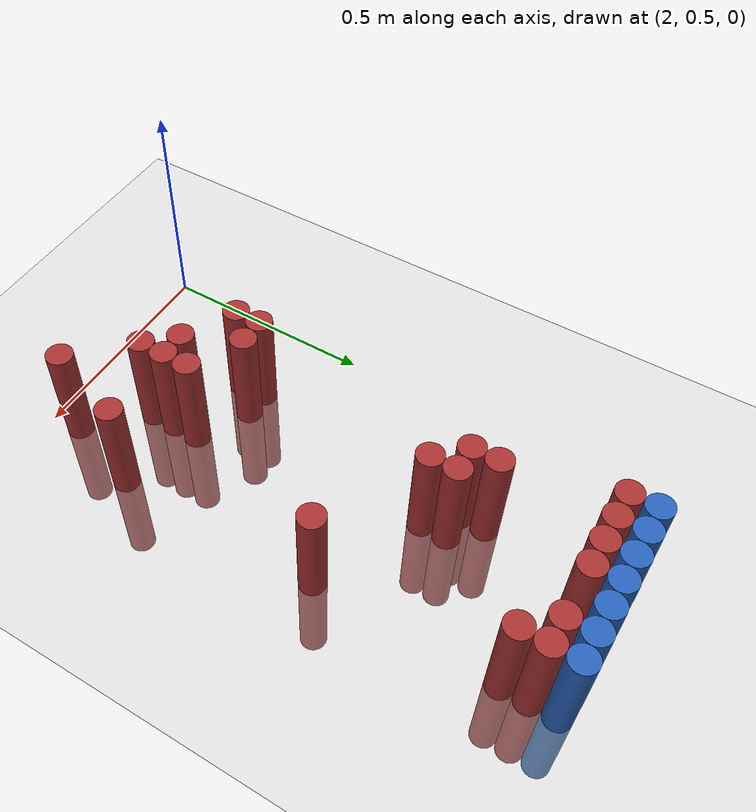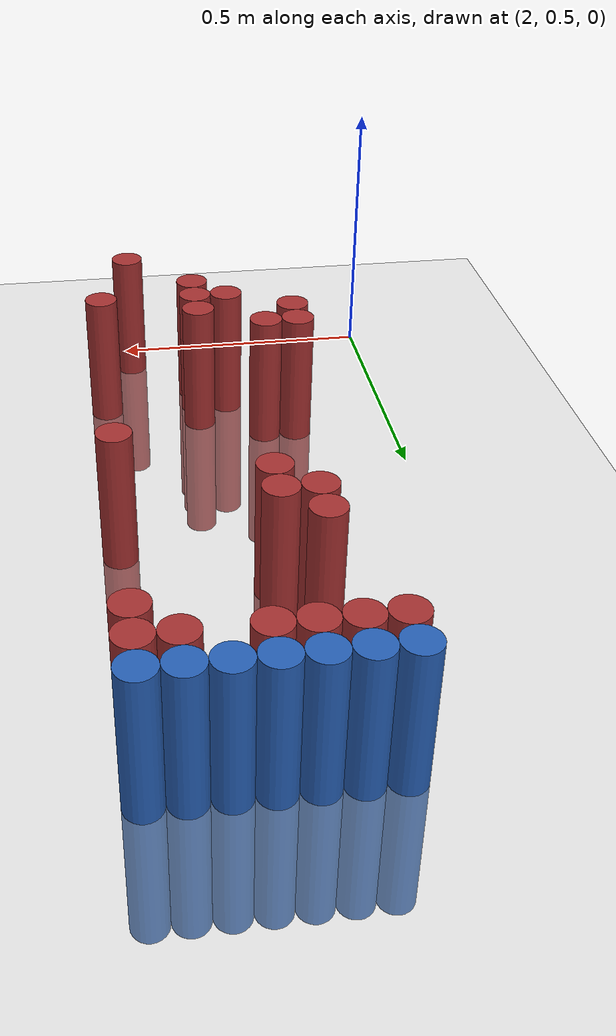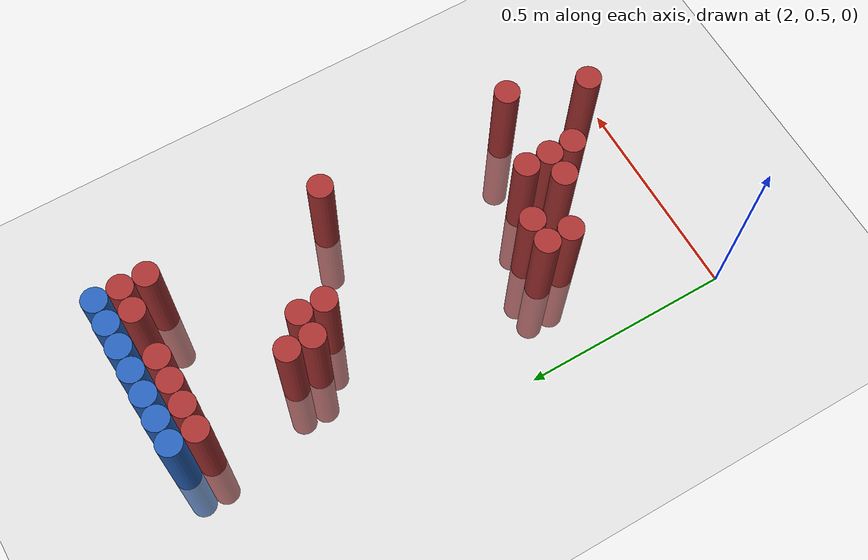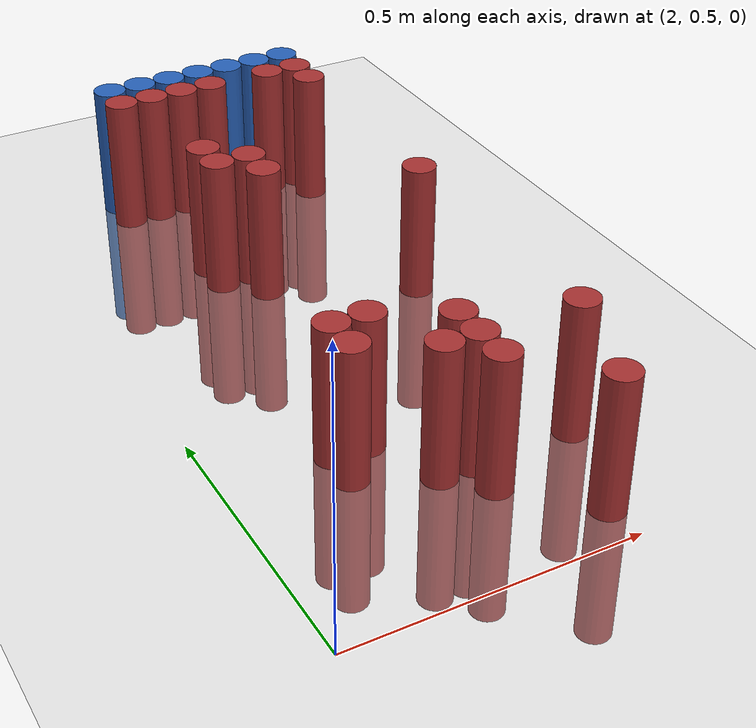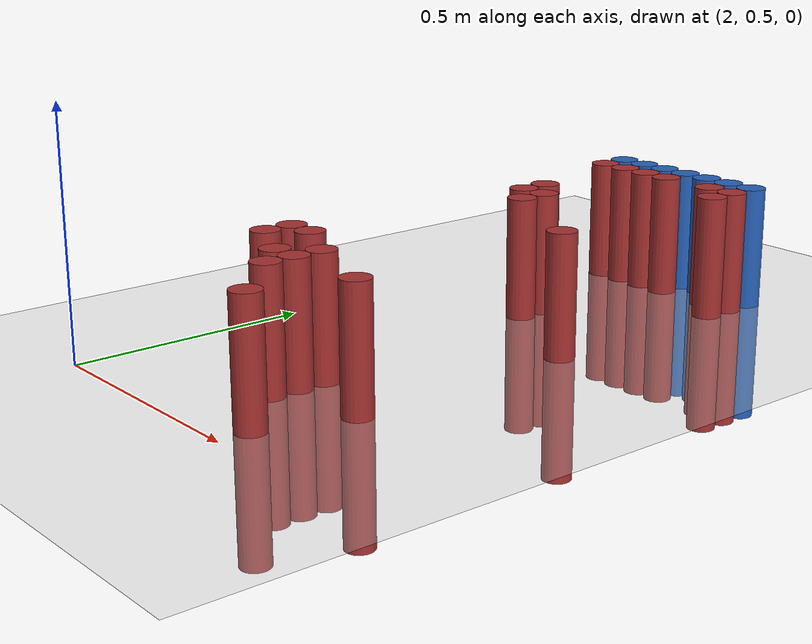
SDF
<sdf version="1.6">
 <world name="default">
  <model name="ground_plane">
   <static>1</static>
   <link name="link">
    <collision name="collision">
     <geometry><plane><normal>0 0 1</normal><size>100 100</size></plane></geometry>
     <surface><friction><ode><mu>100</mu><mu2>50</mu2></ode></friction></surface>
    </collision>
    <visual name="visual">
     <cast_shadows>0</cast_shadows>
     <geometry><plane><normal>0 0 1</normal><size>100 100</size></plane></geometry>
     <material>
      <script><uri>file://media/materials/scripts/gazebo.material</uri><name>Gazebo/Grey</name></script>
     </material>
    </visual>
   </link>
  </model>
  <model name="unit_cylinder_97">
   <static>1</static>
   <pose>2.190000 1.770000 0.000000 0.000000 0.000000 0.000000</pose>
   <link name="link">
    <inertial>
     <mass>1</mass>
     <inertia><ixx>0.145833</ixx><ixy>0</ixy><ixz>0</ixz><iyy>0.145833</iyy><iyz>0</iyz><izz>0.125</izz></inertia>
    </inertial>
    <collision name="collision">
     <geometry><cylinder><radius>0.030000</radius><length>0.5</length></cylinder></geometry>
    </collision>
    <visual name="visual">
     <geometry><cylinder><radius>0.030000</radius><length>0.5</length></cylinder></geometry>
     <material>
      <ambient>0.152000 0.379000 0.720000 1</ambient>
      <diffuse>0.152000 0.379000 0.720000 1</diffuse>
     </material>
     <material>
      <script><name>Gazebo/Grey</name><uri>file://media/materials/scripts/gazebo.material</uri></script>
     </material>
    </visual>
   </link>
  </model>
  <model name="unit_cylinder_98">
   <static>1</static>
   <pose>2.250000 1.770000 0.000000 0.000000 0.000000 0.000000</pose>
   <link name="link">
    <inertial>
     <mass>1</mass>
     <inertia><ixx>0.145833</ixx><ixy>0</ixy><ixz>0</ixz><iyy>0.145833</iyy><iyz>0</iyz><izz>0.125</izz></inertia>
    </inertial>
    <collision name="collision">
     <geometry><cylinder><radius>0.030000</radius><length>0.5</length></cylinder></geometry>
    </collision>
    <visual name="visual">
     <geometry><cylinder><radius>0.030000</radius><length>0.5</length></cylinder></geometry>
     <material>
      <ambient>0.152000 0.379000 0.720000 1</ambient>
      <diffuse>0.152000 0.379000 0.720000 1</diffuse>
     </material>
     <material>
      <script><name>Gazebo/Grey</name><uri>file://media/materials/scripts/gazebo.material</uri></script>
     </material>
    </visual>
   </link>
  </model>
  <model name="unit_cylinder_99">
   <static>1</static>
   <pose>2.310000 1.770000 0.000000 0.000000 0.000000 0.000000</pose>
   <link name="link">
    <inertial>
     <mass>1</mass>
     <inertia><ixx>0.145833</ixx><ixy>0</ixy><ixz>0</ixz><iyy>0.145833</iyy><iyz>0</iyz><izz>0.125</izz></inertia>
    </inertial>
    <collision name="collision">
     <geometry><cylinder><radius>0.030000</radius><length>0.5</length></cylinder></geometry>
    </collision>
    <visual name="visual">
     <geometry><cylinder><radius>0.030000</radius><length>0.5</length></cylinder></geometry>
     <material>
      <ambient>0.152000 0.379000 0.720000 1</ambient>
      <diffuse>0.152000 0.379000 0.720000 1</diffuse>
     </material>
     <material>
      <script><name>Gazebo/Grey</name><uri>file://media/materials/scripts/gazebo.material</uri></script>
     </material>
    </visual>
   </link>
  </model>
  <model name="unit_cylinder_100">
   <static>1</static>
   <pose>2.370000 1.770000 0.000000 0.000000 0.000000 0.000000</pose>
   <link name="link">
    <inertial>
     <mass>1</mass>
     <inertia><ixx>0.145833</ixx><ixy>0</ixy><ixz>0</ixz><iyy>0.145833</iyy><iyz>0</iyz><izz>0.125</izz></inertia>
    </inertial>
    <collision name="collision">
     <geometry><cylinder><radius>0.030000</radius><length>0.5</length></cylinder></geometry>
    </collision>
    <visual name="visual">
     <geometry><cylinder><radius>0.030000</radius><length>0.5</length></cylinder></geometry>
     <material>
      <ambient>0.152000 0.379000 0.720000 1</ambient>
      <diffuse>0.152000 0.379000 0.720000 1</diffuse>
     </material>
     <material>
      <script><name>Gazebo/Grey</name><uri>file://media/materials/scripts/gazebo.material</uri></script>
     </material>
    </visual>
   </link>
  </model>
  <model name="unit_cylinder_101">
   <static>1</static>
   <pose>2.430000 1.770000 0.000000 0.000000 0.000000 0.000000</pose>
   <link name="link">
    <inertial>
     <mass>1</mass>
     <inertia><ixx>0.145833</ixx><ixy>0</ixy><ixz>0</ixz><iyy>0.145833</iyy><iyz>0</iyz><izz>0.125</izz></inertia>
    </inertial>
    <collision name="collision">
     <geometry><cylinder><radius>0.030000</radius><length>0.5</length></cylinder></geometry>
    </collision>
    <visual name="visual">
     <geometry><cylinder><radius>0.030000</radius><length>0.5</length></cylinder></geometry>
     <material>
      <ambient>0.152000 0.379000 0.720000 1</ambient>
      <diffuse>0.152000 0.379000 0.720000 1</diffuse>
     </material>
     <material>
      <script><name>Gazebo/Grey</name><uri>file://media/materials/scripts/gazebo.material</uri></script>
     </material>
    </visual>
   </link>
  </model>
  <model name="unit_cylinder_102">
   <static>1</static>
   <pose>2.490000 1.770000 0.000000 0.000000 0.000000 0.000000</pose>
   <link name="link">
    <inertial>
     <mass>1</mass>
     <inertia><ixx>0.145833</ixx><ixy>0</ixy><ixz>0</ixz><iyy>0.145833</iyy><iyz>0</iyz><izz>0.125</izz></inertia>
    </inertial>
    <collision name="collision">
     <geometry><cylinder><radius>0.030000</radius><length>0.5</length></cylinder></geometry>
    </collision>
    <visual name="visual">
     <geometry><cylinder><radius>0.030000</radius><length>0.5</length></cylinder></geometry>
     <material>
      <ambient>0.152000 0.379000 0.720000 1</ambient>
      <diffuse>0.152000 0.379000 0.720000 1</diffuse>
     </material>
     <material>
      <script><name>Gazebo/Grey</name><uri>file://media/materials/scripts/gazebo.material</uri></script>
     </material>
    </visual>
   </link>
  </model>
  <model name="unit_cylinder_103">
   <static>1</static>
   <pose>2.550000 1.770000 0.000000 0.000000 0.000000 0.000000</pose>
   <link name="link">
    <inertial>
     <mass>1</mass>
     <inertia><ixx>0.145833</ixx><ixy>0</ixy><ixz>0</ixz><iyy>0.145833</iyy><iyz>0</iyz><izz>0.125</izz></inertia>
    </inertial>
    <collision name="collision">
     <geometry><cylinder><radius>0.030000</radius><length>0.5</length></cylinder></geometry>
    </collision>
    <visual name="visual">
     <geometry><cylinder><radius>0.030000</radius><length>0.5</length></cylinder></geometry>
     <material>
      <ambient>0.152000 0.379000 0.720000 1</ambient>
      <diffuse>0.152000 0.379000 0.720000 1</diffuse>
     </material>
     <material>
      <script><name>Gazebo/Grey</name><uri>file://media/materials/scripts/gazebo.material</uri></script>
     </material>
    </visual>
   </link>
  </model>
  <model name="unit_cylinder_126">
   <static>1</static>
   <pose>2.190000 1.710000 0.000000 0.000000 0.000000 0.000000</pose>
   <link name="link">
    <inertial>
     <mass>1</mass>
     <inertia><ixx>0.145833</ixx><ixy>0</ixy><ixz>0</ixz><iyy>0.145833</iyy><iyz>0</iyz><izz>0.125</izz></inertia>
    </inertial>
    <collision name="collision">
     <geometry><cylinder><radius>0.030000</radius><length>0.5</length></cylinder></geometry>
    </collision>
    <visual name="visual">
     <geometry><cylinder><radius>0.030000</radius><length>0.5</length></cylinder></geometry>
     <material>
      <ambient>0.648000 0.192000 0.192000 1</ambient>
      <diffuse>0.648000 0.192000 0.192000 1</diffuse>
     </material>
     <material>
      <script><name>Gazebo/Grey</name><uri>file://media/materials/scripts/gazebo.material</uri></script>
     </material>
    </visual>
   </link>
  </model>
  <model name="unit_cylinder_127">
   <static>1</static>
   <pose>2.250000 1.710000 0.000000 0.000000 0.000000 0.000000</pose>
   <link name="link">
    <inertial>
     <mass>1</mass>
     <inertia><ixx>0.145833</ixx><ixy>0</ixy><ixz>0</ixz><iyy>0.145833</iyy><iyz>0</iyz><izz>0.125</izz></inertia>
    </inertial>
    <collision name="collision">
     <geometry><cylinder><radius>0.030000</radius><length>0.5</length></cylinder></geometry>
    </collision>
    <visual name="visual">
     <geometry><cylinder><radius>0.030000</radius><length>0.5</length></cylinder></geometry>
     <material>
      <ambient>0.648000 0.192000 0.192000 1</ambient>
      <diffuse>0.648000 0.192000 0.192000 1</diffuse>
     </material>
     <material>
      <script><name>Gazebo/Grey</name><uri>file://media/materials/scripts/gazebo.material</uri></script>
     </material>
    </visual>
   </link>
  </model>
  <model name="unit_cylinder_128">
   <static>1</static>
   <pose>2.310000 1.710000 0.000000 0.000000 0.000000 0.000000</pose>
   <link name="link">
    <inertial>
     <mass>1</mass>
     <inertia><ixx>0.145833</ixx><ixy>0</ixy><ixz>0</ixz><iyy>0.145833</iyy><iyz>0</iyz><izz>0.125</izz></inertia>
    </inertial>
    <collision name="collision">
     <geometry><cylinder><radius>0.030000</radius><length>0.5</length></cylinder></geometry>
    </collision>
    <visual name="visual">
     <geometry><cylinder><radius>0.030000</radius><length>0.5</length></cylinder></geometry>
     <material>
      <ambient>0.648000 0.192000 0.192000 1</ambient>
      <diffuse>0.648000 0.192000 0.192000 1</diffuse>
     </material>
     <material>
      <script><name>Gazebo/Grey</name><uri>file://media/materials/scripts/gazebo.material</uri></script>
     </material>
    </visual>
   </link>
  </model>
  <model name="unit_cylinder_129">
   <static>1</static>
   <pose>2.370000 1.710000 0.000000 0.000000 0.000000 0.000000</pose>
   <link name="link">
    <inertial>
     <mass>1</mass>
     <inertia><ixx>0.145833</ixx><ixy>0</ixy><ixz>0</ixz><iyy>0.145833</iyy><iyz>0</iyz><izz>0.125</izz></inertia>
    </inertial>
    <collision name="collision">
     <geometry><cylinder><radius>0.030000</radius><length>0.5</length></cylinder></geometry>
    </collision>
    <visual name="visual">
     <geometry><cylinder><radius>0.030000</radius><length>0.5</length></cylinder></geometry>
     <material>
      <ambient>0.648000 0.192000 0.192000 1</ambient>
      <diffuse>0.648000 0.192000 0.192000 1</diffuse>
     </material>
     <material>
      <script><name>Gazebo/Grey</name><uri>file://media/materials/scripts/gazebo.material</uri></script>
     </material>
    </visual>
   </link>
  </model>
  <model name="unit_cylinder_130">
   <static>1</static>
   <pose>2.490000 1.710000 0.000000 0.000000 0.000000 0.000000</pose>
   <link name="link">
    <inertial>
     <mass>1</mass>
     <inertia><ixx>0.145833</ixx><ixy>0</ixy><ixz>0</ixz><iyy>0.145833</iyy><iyz>0</iyz><izz>0.125</izz></inertia>
    </inertial>
    <collision name="collision">
     <geometry><cylinder><radius>0.030000</radius><length>0.5</length></cylinder></geometry>
    </collision>
    <visual name="visual">
     <geometry><cylinder><radius>0.030000</radius><length>0.5</length></cylinder></geometry>
     <material>
      <ambient>0.648000 0.192000 0.192000 1</ambient>
      <diffuse>0.648000 0.192000 0.192000 1</diffuse>
     </material>
     <material>
      <script><name>Gazebo/Grey</name><uri>file://media/materials/scripts/gazebo.material</uri></script>
     </material>
    </visual>
   </link>
  </model>
  <model name="unit_cylinder_131">
   <static>1</static>
   <pose>2.550000 1.710000 0.000000 0.000000 0.000000 0.000000</pose>
   <link name="link">
    <inertial>
     <mass>1</mass>
     <inertia><ixx>0.145833</ixx><ixy>0</ixy><ixz>0</ixz><iyy>0.145833</iyy><iyz>0</iyz><izz>0.125</izz></inertia>
    </inertial>
    <collision name="collision">
     <geometry><cylinder><radius>0.030000</radius><length>0.5</length></cylinder></geometry>
    </collision>
    <visual name="visual">
     <geometry><cylinder><radius>0.030000</radius><length>0.5</length></cylinder></geometry>
     <material>
      <ambient>0.648000 0.192000 0.192000 1</ambient>
      <diffuse>0.648000 0.192000 0.192000 1</diffuse>
     </material>
     <material>
      <script><name>Gazebo/Grey</name><uri>file://media/materials/scripts/gazebo.material</uri></script>
     </material>
    </visual>
   </link>
  </model>
  <model name="unit_cylinder_138">
   <static>1</static>
   <pose>2.550000 1.650000 0.000000 0.000000 0.000000 0.000000</pose>
   <link name="link">
    <inertial>
     <mass>1</mass>
     <inertia><ixx>0.145833</ixx><ixy>0</ixy><ixz>0</ixz><iyy>0.145833</iyy><iyz>0</iyz><izz>0.125</izz></inertia>
    </inertial>
    <collision name="collision">
     <geometry><cylinder><radius>0.030000</radius><length>0.5</length></cylinder></geometry>
    </collision>
    <visual name="visual">
     <geometry><cylinder><radius>0.030000</radius><length>0.5</length></cylinder></geometry>
     <material>
      <ambient>0.648000 0.192000 0.192000 1</ambient>
      <diffuse>0.648000 0.192000 0.192000 1</diffuse>
     </material>
     <material>
      <script><name>Gazebo/Grey</name><uri>file://media/materials/scripts/gazebo.material</uri></script>
     </material>
    </visual>
   </link>
  </model>
  <model name="unit_cylinder_168">
   <static>1</static>
   <pose>2.250000 1.470000 0.000000 0.000000 0.000000 0.000000</pose>
   <link name="link">
    <inertial>
     <mass>1</mass>
     <inertia><ixx>0.145833</ixx><ixy>0</ixy><ixz>0</ixz><iyy>0.145833</iyy><iyz>0</iyz><izz>0.125</izz></inertia>
    </inertial>
    <collision name="collision">
     <geometry><cylinder><radius>0.030000</radius><length>0.5</length></cylinder></geometry>
    </collision>
    <visual name="visual">
     <geometry><cylinder><radius>0.030000</radius><length>0.5</length></cylinder></geometry>
     <material>
      <ambient>0.648000 0.192000 0.192000 1</ambient>
      <diffuse>0.648000 0.192000 0.192000 1</diffuse>
     </material>
     <material>
      <script><name>Gazebo/Grey</name><uri>file://media/materials/scripts/gazebo.material</uri></script>
     </material>
    </visual>
   </link>
  </model>
  <model name="unit_cylinder_174">
   <static>1</static>
   <pose>2.250000 1.410000 0.000000 0.000000 0.000000 0.000000</pose>
   <link name="link">
    <inertial>
     <mass>1</mass>
     <inertia><ixx>0.145833</ixx><ixy>0</ixy><ixz>0</ixz><iyy>0.145833</iyy><iyz>0</iyz><izz>0.125</izz></inertia>
    </inertial>
    <collision name="collision">
     <geometry><cylinder><radius>0.030000</radius><length>0.5</length></cylinder></geometry>
    </collision>
    <visual name="visual">
     <geometry><cylinder><radius>0.030000</radius><length>0.5</length></cylinder></geometry>
     <material>
      <ambient>0.648000 0.192000 0.192000 1</ambient>
      <diffuse>0.648000 0.192000 0.192000 1</diffuse>
     </material>
     <material>
      <script><name>Gazebo/Grey</name><uri>file://media/materials/scripts/gazebo.material</uri></script>
     </material>
    </visual>
   </link>
  </model>
  <model name="unit_cylinder_175">
   <static>1</static>
   <pose>2.310000 1.410000 0.000000 0.000000 0.000000 0.000000</pose>
   <link name="link">
    <inertial>
     <mass>1</mass>
     <inertia><ixx>0.145833</ixx><ixy>0</ixy><ixz>0</ixz><iyy>0.145833</iyy><iyz>0</iyz><izz>0.125</izz></inertia>
    </inertial>
    <collision name="collision">
     <geometry><cylinder><radius>0.030000</radius><length>0.5</length></cylinder></geometry>
    </collision>
    <visual name="visual">
     <geometry><cylinder><radius>0.030000</radius><length>0.5</length></cylinder></geometry>
     <material>
      <ambient>0.648000 0.192000 0.192000 1</ambient>
      <diffuse>0.648000 0.192000 0.192000 1</diffuse>
     </material>
     <material>
      <script><name>Gazebo/Grey</name><uri>file://media/materials/scripts/gazebo.material</uri></script>
     </material>
    </visual>
   </link>
  </model>
  <model name="unit_cylinder_181">
   <static>1</static>
   <pose>2.310000 1.350000 0.000000 0.000000 0.000000 0.000000</pose>
   <link name="link">
    <inertial>
     <mass>1</mass>
     <inertia><ixx>0.145833</ixx><ixy>0</ixy><ixz>0</ixz><iyy>0.145833</iyy><iyz>0</iyz><izz>0.125</izz></inertia>
    </inertial>
    <collision name="collision">
     <geometry><cylinder><radius>0.030000</radius><length>0.5</length></cylinder></geometry>
    </collision>
    <visual name="visual">
     <geometry><cylinder><radius>0.030000</radius><length>0.5</length></cylinder></geometry>
     <material>
      <ambient>0.648000 0.192000 0.192000 1</ambient>
      <diffuse>0.648000 0.192000 0.192000 1</diffuse>
     </material>
     <material>
      <script><name>Gazebo/Grey</name><uri>file://media/materials/scripts/gazebo.material</uri></script>
     </material>
    </visual>
   </link>
  </model>
  <model name="unit_cylinder_185">
   <static>1</static>
   <pose>2.550000 1.230000 0.000000 0.000000 0.000000 0.000000</pose>
   <link name="link">
    <inertial>
     <mass>1</mass>
     <inertia><ixx>0.145833</ixx><ixy>0</ixy><ixz>0</ixz><iyy>0.145833</iyy><iyz>0</iyz><izz>0.125</izz></inertia>
    </inertial>
    <collision name="collision">
     <geometry><cylinder><radius>0.030000</radius><length>0.5</length></cylinder></geometry>
    </collision>
    <visual name="visual">
     <geometry><cylinder><radius>0.030000</radius><length>0.5</length></cylinder></geometry>
     <material>
      <ambient>0.648000 0.192000 0.192000 1</ambient>
      <diffuse>0.648000 0.192000 0.192000 1</diffuse>
     </material>
     <material>
      <script><name>Gazebo/Grey</name><uri>file://media/materials/scripts/gazebo.material</uri></script>
     </material>
    </visual>
   </link>
  </model>
  <model name="unit_cylinder_187">
   <static>1</static>
   <pose>2.190000 0.870000 0.000000 0.000000 0.000000 0.000000</pose>
   <link name="link">
    <inertial>
     <mass>1</mass>
     <inertia><ixx>0.145833</ixx><ixy>0</ixy><ixz>0</ixz><iyy>0.145833</iyy><iyz>0</iyz><izz>0.125</izz></inertia>
    </inertial>
    <collision name="collision">
     <geometry><cylinder><radius>0.030000</radius><length>0.5</length></cylinder></geometry>
    </collision>
    <visual name="visual">
     <geometry><cylinder><radius>0.030000</radius><length>0.5</length></cylinder></geometry>
     <material>
      <ambient>0.648000 0.192000 0.192000 1</ambient>
      <diffuse>0.648000 0.192000 0.192000 1</diffuse>
     </material>
     <material>
      <script><name>Gazebo/Grey</name><uri>file://media/materials/scripts/gazebo.material</uri></script>
     </material>
    </visual>
   </link>
  </model>
  <model name="unit_cylinder_188">
   <static>1</static>
   <pose>2.250000 0.870000 0.000000 0.000000 0.000000 0.000000</pose>
   <link name="link">
    <inertial>
     <mass>1</mass>
     <inertia><ixx>0.145833</ixx><ixy>0</ixy><ixz>0</ixz><iyy>0.145833</iyy><iyz>0</iyz><izz>0.125</izz></inertia>
    </inertial>
    <collision name="collision">
     <geometry><cylinder><radius>0.030000</radius><length>0.5</length></cylinder></geometry>
    </collision>
    <visual name="visual">
     <geometry><cylinder><radius>0.030000</radius><length>0.5</length></cylinder></geometry>
     <material>
      <ambient>0.648000 0.192000 0.192000 1</ambient>
      <diffuse>0.648000 0.192000 0.192000 1</diffuse>
     </material>
     <material>
      <script><name>Gazebo/Grey</name><uri>file://media/materials/scripts/gazebo.material</uri></script>
     </material>
    </visual>
   </link>
  </model>
  <model name="unit_cylinder_191">
   <static>1</static>
   <pose>2.190000 0.810000 0.000000 0.000000 0.000000 0.000000</pose>
   <link name="link">
    <inertial>
     <mass>1</mass>
     <inertia><ixx>0.145833</ixx><ixy>0</ixy><ixz>0</ixz><iyy>0.145833</iyy><iyz>0</iyz><izz>0.125</izz></inertia>
    </inertial>
    <collision name="collision">
     <geometry><cylinder><radius>0.030000</radius><length>0.5</length></cylinder></geometry>
    </collision>
    <visual name="visual">
     <geometry><cylinder><radius>0.030000</radius><length>0.5</length></cylinder></geometry>
     <material>
      <ambient>0.648000 0.192000 0.192000 1</ambient>
      <diffuse>0.648000 0.192000 0.192000 1</diffuse>
     </material>
     <material>
      <script><name>Gazebo/Grey</name><uri>file://media/materials/scripts/gazebo.material</uri></script>
     </material>
    </visual>
   </link>
  </model>
  <model name="unit_cylinder_192">
   <static>1</static>
   <pose>2.370000 0.810000 0.000000 0.000000 0.000000 0.000000</pose>
   <link name="link">
    <inertial>
     <mass>1</mass>
     <inertia><ixx>0.145833</ixx><ixy>0</ixy><ixz>0</ixz><iyy>0.145833</iyy><iyz>0</iyz><izz>0.125</izz></inertia>
    </inertial>
    <collision name="collision">
     <geometry><cylinder><radius>0.030000</radius><length>0.5</length></cylinder></geometry>
    </collision>
    <visual name="visual">
     <geometry><cylinder><radius>0.030000</radius><length>0.5</length></cylinder></geometry>
     <material>
      <ambient>0.648000 0.192000 0.192000 1</ambient>
      <diffuse>0.648000 0.192000 0.192000 1</diffuse>
     </material>
     <material>
      <script><name>Gazebo/Grey</name><uri>file://media/materials/scripts/gazebo.material</uri></script>
     </material>
    </visual>
   </link>
  </model>
  <model name="unit_cylinder_201">
   <static>1</static>
   <pose>2.310000 0.750000 0.000000 0.000000 0.000000 0.000000</pose>
   <link name="link">
    <inertial>
     <mass>1</mass>
     <inertia><ixx>0.145833</ixx><ixy>0</ixy><ixz>0</ixz><iyy>0.145833</iyy><iyz>0</iyz><izz>0.125</izz></inertia>
    </inertial>
    <collision name="collision">
     <geometry><cylinder><radius>0.030000</radius><length>0.5</length></cylinder></geometry>
    </collision>
    <visual name="visual">
     <geometry><cylinder><radius>0.030000</radius><length>0.5</length></cylinder></geometry>
     <material>
      <ambient>0.648000 0.192000 0.192000 1</ambient>
      <diffuse>0.648000 0.192000 0.192000 1</diffuse>
     </material>
     <material>
      <script><name>Gazebo/Grey</name><uri>file://media/materials/scripts/gazebo.material</uri></script>
     </material>
    </visual>
   </link>
  </model>
  <model name="unit_cylinder_202">
   <static>1</static>
   <pose>2.370000 0.750000 0.000000 0.000000 0.000000 0.000000</pose>
   <link name="link">
    <inertial>
     <mass>1</mass>
     <inertia><ixx>0.145833</ixx><ixy>0</ixy><ixz>0</ixz><iyy>0.145833</iyy><iyz>0</iyz><izz>0.125</izz></inertia>
    </inertial>
    <collision name="collision">
     <geometry><cylinder><radius>0.030000</radius><length>0.5</length></cylinder></geometry>
    </collision>
    <visual name="visual">
     <geometry><cylinder><radius>0.030000</radius><length>0.5</length></cylinder></geometry>
     <material>
      <ambient>0.648000 0.192000 0.192000 1</ambient>
      <diffuse>0.648000 0.192000 0.192000 1</diffuse>
     </material>
     <material>
      <script><name>Gazebo/Grey</name><uri>file://media/materials/scripts/gazebo.material</uri></script>
     </material>
    </visual>
   </link>
  </model>
  <model name="unit_cylinder_203">
   <static>1</static>
   <pose>2.550000 0.750000 0.000000 0.000000 0.000000 0.000000</pose>
   <link name="link">
    <inertial>
     <mass>1</mass>
     <inertia><ixx>0.145833</ixx><ixy>0</ixy><ixz>0</ixz><iyy>0.145833</iyy><iyz>0</iyz><izz>0.125</izz></inertia>
    </inertial>
    <collision name="collision">
     <geometry><cylinder><radius>0.030000</radius><length>0.5</length></cylinder></geometry>
    </collision>
    <visual name="visual">
     <geometry><cylinder><radius>0.030000</radius><length>0.5</length></cylinder></geometry>
     <material>
      <ambient>0.648000 0.192000 0.192000 1</ambient>
      <diffuse>0.648000 0.192000 0.192000 1</diffuse>
     </material>
     <material>
      <script><name>Gazebo/Grey</name><uri>file://media/materials/scripts/gazebo.material</uri></script>
     </material>
    </visual>
   </link>
  </model>
  <model name="unit_cylinder_211">
   <static>1</static>
   <pose>2.370000 0.690000 0.000000 0.000000 0.000000 0.000000</pose>
   <link name="link">
    <inertial>
     <mass>1</mass>
     <inertia><ixx>0.145833</ixx><ixy>0</ixy><ixz>0</ixz><iyy>0.145833</iyy><iyz>0</iyz><izz>0.125</izz></inertia>
    </inertial>
    <collision name="collision">
     <geometry><cylinder><radius>0.030000</radius><length>0.5</length></cylinder></geometry>
    </collision>
    <visual name="visual">
     <geometry><cylinder><radius>0.030000</radius><length>0.5</length></cylinder></geometry>
     <material>
      <ambient>0.648000 0.192000 0.192000 1</ambient>
      <diffuse>0.648000 0.192000 0.192000 1</diffuse>
     </material>
     <material>
      <script><name>Gazebo/Grey</name><uri>file://media/materials/scripts/gazebo.material</uri></script>
     </material>
    </visual>
   </link>
  </model>
  <model name="unit_cylinder_227">
   <static>1</static>
   <pose>2.490000 0.570000 0.000000 0.000000 0.000000 0.000000</pose>
   <link name="link">
    <inertial>
     <mass>1</mass>
     <inertia><ixx>0.145833</ixx><ixy>0</ixy><ixz>0</ixz><iyy>0.145833</iyy><iyz>0</iyz><izz>0.125</izz></inertia>
    </inertial>
    <collision name="collision">
     <geometry><cylinder><radius>0.030000</radius><length>0.5</length></cylinder></geometry>
    </collision>
    <visual name="visual">
     <geometry><cylinder><radius>0.030000</radius><length>0.5</length></cylinder></geometry>
     <material>
      <ambient>0.648000 0.192000 0.192000 1</ambient>
      <diffuse>0.648000 0.192000 0.192000 1</diffuse>
     </material>
     <material>
      <script><name>Gazebo/Grey</name><uri>file://media/materials/scripts/gazebo.material</uri></script>
     </material>
    </visual>
   </link>
  </model>
 </world>
</sdf>
